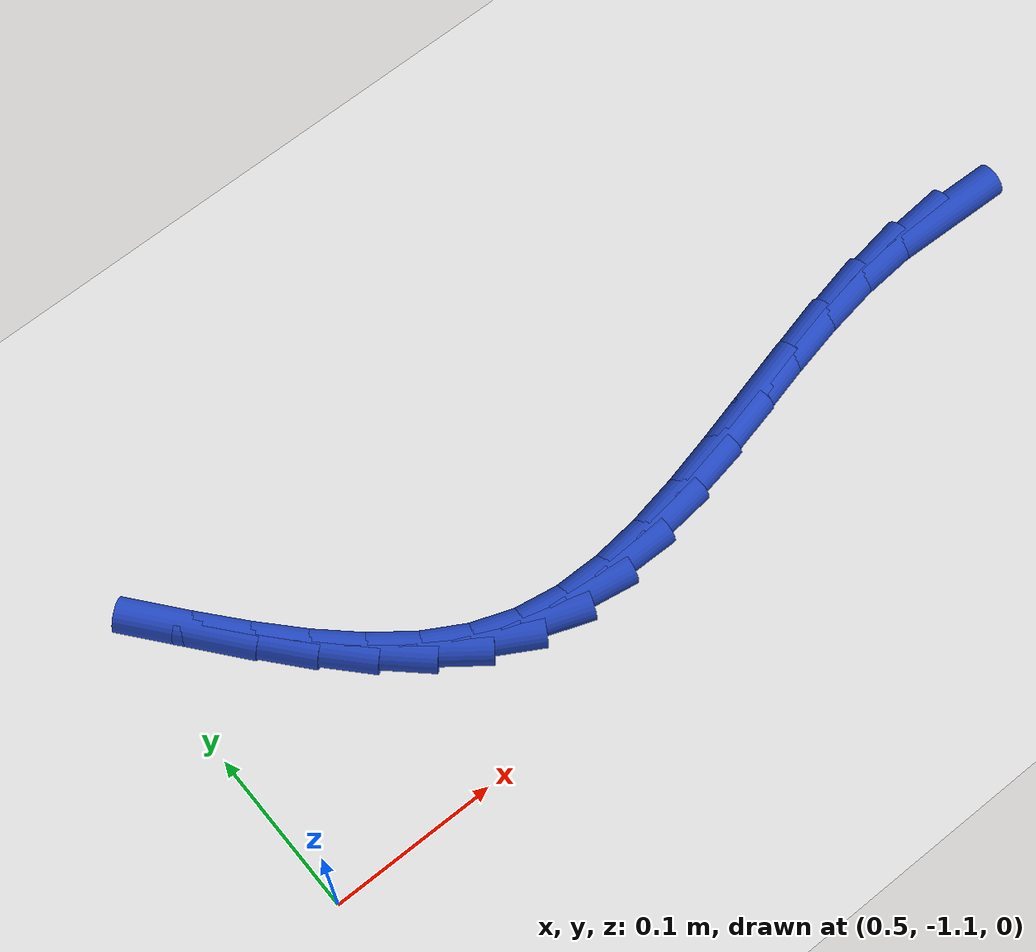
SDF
<sdf version="1.6">
 <world name="default">
  <model name="ground_plane">
   <static>1</static>
   <link name="link">
    <collision name="collision">
     <geometry><plane><normal>0 0 1</normal><size>100 100</size></plane></geometry>
     <surface><friction><ode><mu>100</mu><mu2>50</mu2></ode></friction></surface>
    </collision>
    <visual name="visual">
     <cast_shadows>0</cast_shadows>
     <geometry><plane><normal>0 0 1</normal><size>100 100</size></plane></geometry>
     <material>
      <script><uri>file://media/materials/scripts/gazebo.material</uri><name>Gazebo/WhiteGlow</name></script>
     </material>
    </visual>
   </link>
  </model>
  <model name="line">
   <link name="link_158">
    <pose>1.0115065226412294 -1.0013961438314147 0.01 0 1.57 -0.031274682027239015</pose>
    <collision name="collision">
     <geometry><cylinder><radius>0.01</radius><length>0.08</length></cylinder></geometry>
    </collision>
    <visual name="visual">
     <material>
      <script><name>Gazebo/Blue</name><uri>file://media/materials/scripts/gazebo.material</uri></script>
     </material>
     <geometry><cylinder><radius>0.01</radius><length>0.08</length></cylinder></geometry>
    </visual>
   </link>
   <link name="link_159">
    <pose>0.9798654933662387 -1.0004062579430897 0.01 0 1.57 0.07919434586359202</pose>
    <collision name="collision">
     <geometry><cylinder><radius>0.01</radius><length>0.08</length></cylinder></geometry>
    </collision>
    <visual name="visual">
     <material>
      <script><name>Gazebo/Blue</name><uri>file://media/materials/scripts/gazebo.material</uri></script>
     </material>
     <geometry><cylinder><radius>0.01</radius><length>0.08</length></cylinder></geometry>
    </visual>
   </link>
   <link name="link_160">
    <pose>0.9477043064520831 -1.0029585801728518 0.01 0 1.57 0.16126192947205364</pose>
    <collision name="collision">
     <geometry><cylinder><radius>0.01</radius><length>0.08</length></cylinder></geometry>
    </collision>
    <visual name="visual">
     <material>
      <script><name>Gazebo/Blue</name><uri>file://media/materials/scripts/gazebo.material</uri></script>
     </material>
     <geometry><cylinder><radius>0.01</radius><length>0.08</length></cylinder></geometry>
    </visual>
   </link>
   <link name="link_161">
    <pose>0.9152191677276549 -1.0082430845050532 0.01 0 1.57 0.21544413563756903</pose>
    <collision name="collision">
     <geometry><cylinder><radius>0.01</radius><length>0.08</length></cylinder></geometry>
    </collision>
    <visual name="visual">
     <material>
      <script><name>Gazebo/Blue</name><uri>file://media/materials/scripts/gazebo.material</uri></script>
     </material>
     <geometry><cylinder><radius>0.01</radius><length>0.08</length></cylinder></geometry>
    </visual>
   </link>
   <link name="link_162">
    <pose>0.8826200707258325 -1.0153770895965788 0.01 0 1.57 0.2442563296288634</pose>
    <collision name="collision">
     <geometry><cylinder><radius>0.01</radius><length>0.08</length></cylinder></geometry>
    </collision>
    <visual name="visual">
     <material>
      <script><name>Gazebo/Blue</name><uri>file://media/materials/scripts/gazebo.material</uri></script>
     </material>
     <geometry><cylinder><radius>0.01</radius><length>0.08</length></cylinder></geometry>
    </visual>
   </link>
   <link name="link_163">
    <pose>0.8501170089794947 -1.0234779141043127 0.01 0 1.57 0.24894159121900789</pose>
    <collision name="collision">
     <geometry><cylinder><radius>0.01</radius><length>0.08</length></cylinder></geometry>
    </collision>
    <visual name="visual">
     <material>
      <script><name>Gazebo/Blue</name><uri>file://media/materials/scripts/gazebo.material</uri></script>
     </material>
     <geometry><cylinder><radius>0.01</radius><length>0.08</length></cylinder></geometry>
    </visual>
   </link>
   <link name="link_164">
    <pose>0.81791997602152 -1.0316628766851392 0.01 0 1.57 0.22905780994334998</pose>
    <collision name="collision">
     <geometry><cylinder><radius>0.01</radius><length>0.08</length></cylinder></geometry>
    </collision>
    <visual name="visual">
     <material>
      <script><name>Gazebo/Blue</name><uri>file://media/materials/scripts/gazebo.material</uri></script>
     </material>
     <geometry><cylinder><radius>0.01</radius><length>0.08</length></cylinder></geometry>
    </visual>
   </link>
   <link name="link_165">
    <pose>0.7862389653847884 -1.0390492959959432 0.01 0 1.57 0.18226075629903438</pose>
    <collision name="collision">
     <geometry><cylinder><radius>0.01</radius><length>0.08</length></cylinder></geometry>
    </collision>
    <visual name="visual">
     <material>
      <script><name>Gazebo/Blue</name><uri>file://media/materials/scripts/gazebo.material</uri></script>
     </material>
     <geometry><cylinder><radius>0.01</radius><length>0.08</length></cylinder></geometry>
    </visual>
   </link>
   <link name="link_166">
    <pose>0.7552839706021786 -1.0447544906936093 0.01 0 1.57 0.10426393471177661</pose>
    <collision name="collision">
     <geometry><cylinder><radius>0.01</radius><length>0.08</length></cylinder></geometry>
    </collision>
    <visual name="visual">
     <material>
      <script><name>Gazebo/Blue</name><uri>file://media/materials/scripts/gazebo.material</uri></script>
     </material>
     <geometry><cylinder><radius>0.01</radius><length>0.08</length></cylinder></geometry>
    </visual>
   </link>
   <link name="link_167">
    <pose>0.7252649852065686 -1.0478957794350212 0.01 0 1.57 -0.010573454989557833</pose>
    <collision name="collision">
     <geometry><cylinder><radius>0.01</radius><length>0.08</length></cylinder></geometry>
    </collision>
    <visual name="visual">
     <material>
      <script><name>Gazebo/Blue</name><uri>file://media/materials/scripts/gazebo.material</uri></script>
     </material>
     <geometry><cylinder><radius>0.01</radius><length>0.08</length></cylinder></geometry>
    </visual>
   </link>
   <link name="link_168">
    <pose>0.6963920027308377 -1.047590480877064 0.01 0 1.57 -0.1668596642960143</pose>
    <collision name="collision">
     <geometry><cylinder><radius>0.01</radius><length>0.08</length></cylinder></geometry>
    </collision>
    <visual name="visual">
     <material>
      <script><name>Gazebo/Blue</name><uri>file://media/materials/scripts/gazebo.material</uri></script>
     </material>
     <geometry><cylinder><radius>0.01</radius><length>0.08</length></cylinder></geometry>
    </visual>
   </link>
   <link name="link_169">
    <pose>0.6688750167078643 -1.0429559136766215 0.01 0 1.57 -0.3543015159960016</pose>
    <collision name="collision">
     <geometry><cylinder><radius>0.01</radius><length>0.08</length></cylinder></geometry>
    </collision>
    <visual name="visual">
     <material>
      <script><name>Gazebo/Blue</name><uri>file://media/materials/scripts/gazebo.material</uri></script>
     </material>
     <geometry><cylinder><radius>0.01</radius><length>0.08</length></cylinder></geometry>
    </visual>
   </link>
   <link name="link_170">
    <pose>0.6428616559282927 -1.0333332888612605 0.01 0 1.57 -0.522857190606296</pose>
    <collision name="collision">
     <geometry><cylinder><radius>0.01</radius><length>0.08</length></cylinder></geometry>
    </collision>
    <visual name="visual">
     <material>
      <script><name>Gazebo/Blue</name><uri>file://media/materials/scripts/gazebo.material</uri></script>
     </material>
     <geometry><cylinder><radius>0.01</radius><length>0.08</length></cylinder></geometry>
    </visual>
   </link>
   <link name="link_171">
    <pose>0.6182047915319211 -1.0191220113491977 0.01 0 1.57 -0.6552881535378517</pose>
    <collision name="collision">
     <geometry><cylinder><radius>0.01</radius><length>0.08</length></cylinder></geometry>
    </collision>
    <visual name="visual">
     <material>
      <script><name>Gazebo/Blue</name><uri>file://media/materials/scripts/gazebo.material</uri></script>
     </material>
     <geometry><cylinder><radius>0.01</radius><length>0.08</length></cylinder></geometry>
    </visual>
   </link>
   <link name="link_172">
    <pose>0.5946702966572361 -1.001033812993071 0.01 0 1.57 -0.7536790673141707</pose>
    <collision name="collision">
     <geometry><cylinder><radius>0.01</radius><length>0.08</length></cylinder></geometry>
    </collision>
    <visual name="visual">
     <material>
      <script><name>Gazebo/Blue</name><uri>file://media/materials/scripts/gazebo.material</uri></script>
     </material>
     <geometry><cylinder><radius>0.01</radius><length>0.08</length></cylinder></geometry>
    </visual>
   </link>
   <link name="link_173">
    <pose>0.5720240317741542 -0.9797804711262813 0.01 0 1.57 -0.8228986392654627</pose>
    <collision name="collision">
     <geometry><cylinder><radius>0.01</radius><length>0.08</length></cylinder></geometry>
    </collision>
    <visual name="visual">
     <material>
      <script><name>Gazebo/Blue</name><uri>file://media/materials/scripts/gazebo.material</uri></script>
     </material>
     <geometry><cylinder><radius>0.01</radius><length>0.08</length></cylinder></geometry>
    </visual>
   </link>
   <link name="link_174">
    <pose>0.5500318573525927 -0.9560737630822304 0.01 0 1.57 -0.8676458562477912</pose>
    <collision name="collision">
     <geometry><cylinder><radius>0.01</radius><length>0.08</length></cylinder></geometry>
    </collision>
    <visual name="visual">
     <material>
      <script><name>Gazebo/Blue</name><uri>file://media/materials/scripts/gazebo.material</uri></script>
     </material>
     <geometry><cylinder><radius>0.01</radius><length>0.08</length></cylinder></geometry>
    </visual>
   </link>
   <link name="link_175">
    <pose>0.5284596338624684 -0.930625466194319 0.01 0 1.57 -0.8913768618838462</pose>
    <collision name="collision">
     <geometry><cylinder><radius>0.01</radius><length>0.08</length></cylinder></geometry>
    </collision>
    <visual name="visual">
     <material>
      <script><name>Gazebo/Blue</name><uri>file://media/materials/scripts/gazebo.material</uri></script>
     </material>
     <geometry><cylinder><radius>0.01</radius><length>0.08</length></cylinder></geometry>
    </visual>
   </link>
  </model>
 </world>
</sdf>
